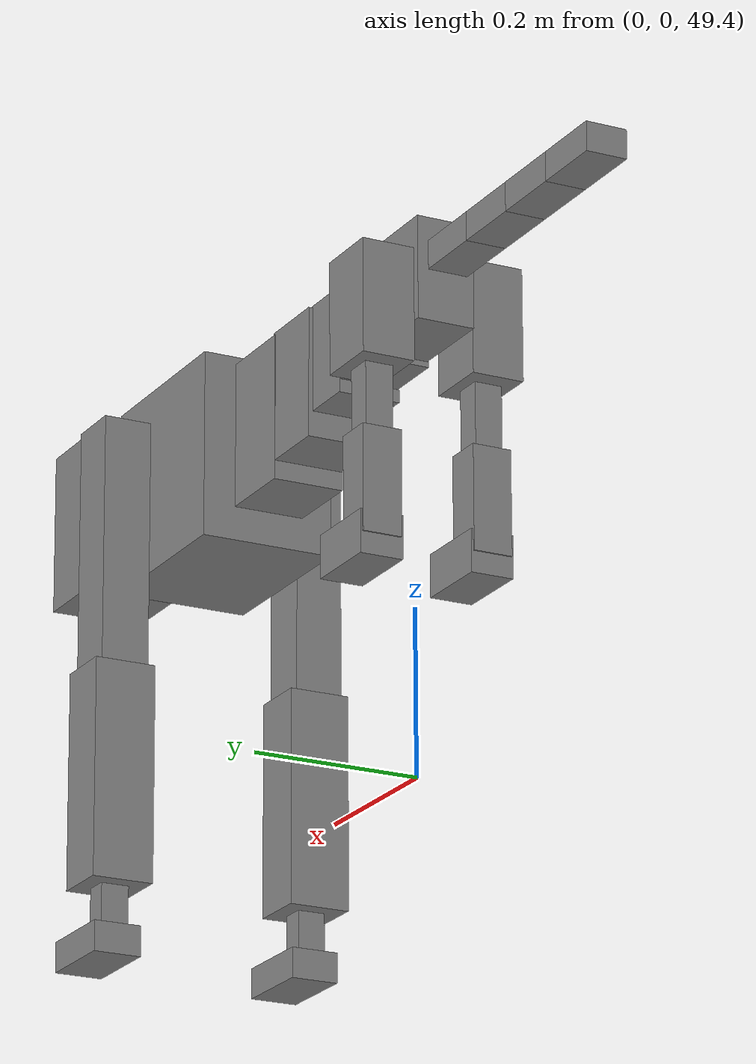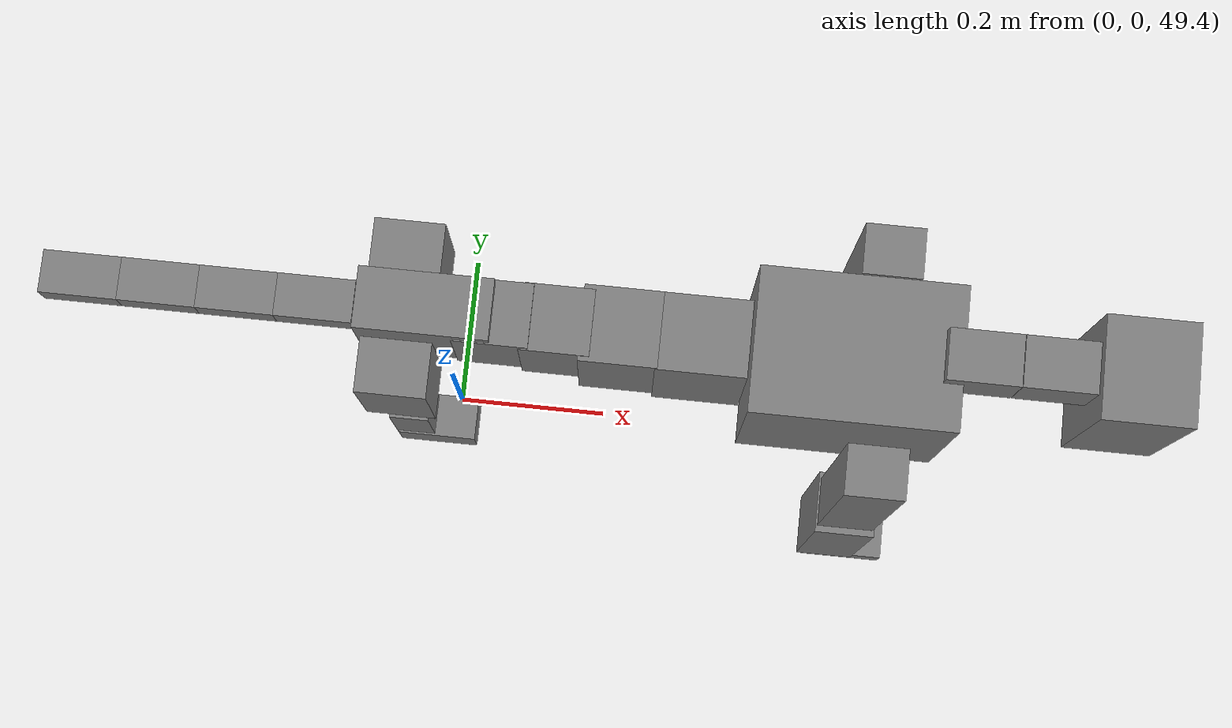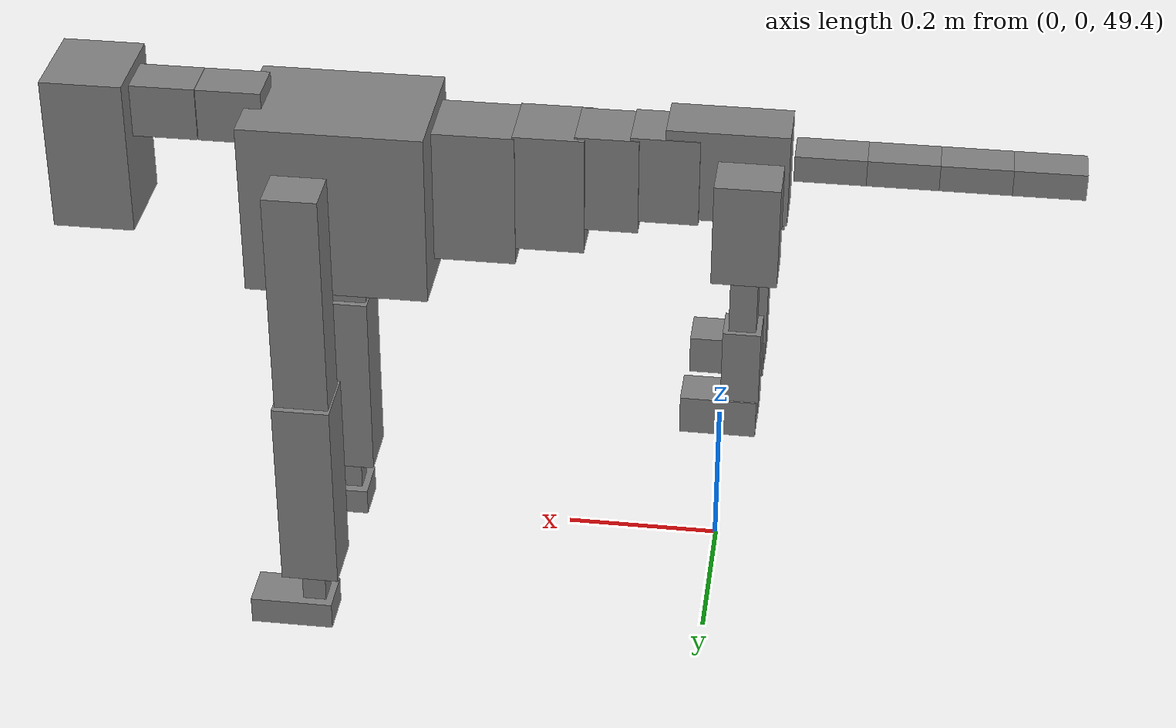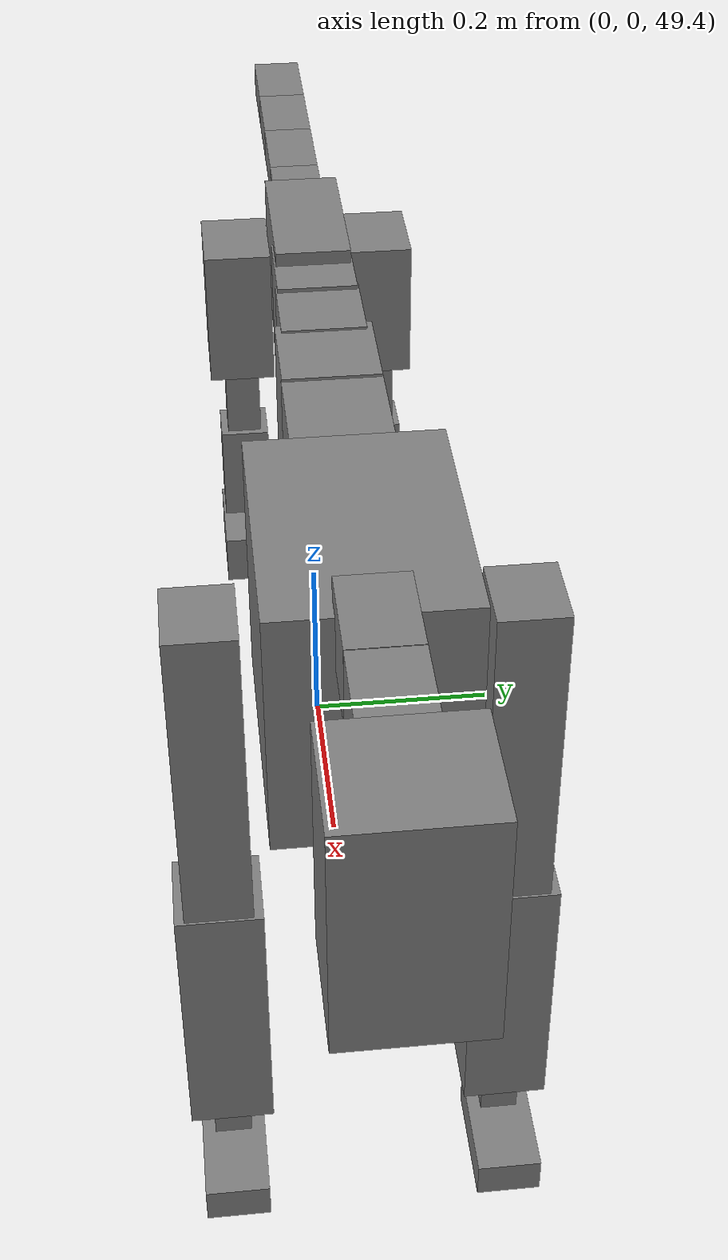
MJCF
<mujoco model="dog">

    <default>
        <joint armature="0.02" stiffness="1" damping="0.2" limited="true"/>
        <geom condim="3" friction="1 0.05 0.05" margin="0.01"/>
        <motor ctrllimited="true" ctrlrange="-1.0 1.0" forcelimited="true" gear="50"/>
    </default>

    <compiler inertiafromgeom="true" angle="radian"/>

    <option timestep="0.016" iterations="50" tolerance="1e-10" solver="Newton" jacobian="dense" cone="pyramidal"/>

    <size nconmax="20000" njmax="60000" nstack="5000000"/>
    <visual>
        <map force="0.1" zfar="30"/>
        <rgba haze="0.15 0.25 0.35 1"/>
        <quality shadowsize="2048"/>
        <global offwidth="800" offheight="800"/>
    </visual>

    <asset>
        <texture type="skybox" builtin="gradient" rgb1="0.3 0.5 0.7" rgb2="0 0 0" width="512" height="512"/>
        <texture name="texplane" type="2d" builtin="checker" rgb1=".2 .3 .4" rgb2=".1 0.15 0.2" width="512" height="512"
                 mark="cross" markrgb=".8 .8 .8"/>
        <texture name="texgeom" type="cube" builtin="flat" mark="cross" width="127" height="1278" rgb1="0.8 0.6 0.4"
                 rgb2="0.8 0.6 0.4" markrgb="1 1 1" random="0.01"/>

        <material name="matplane" reflectance="0.3" texture="texplane" texrepeat="1 1" texuniform="true"/>
        <material name="matgeom" texture="texgeom" texuniform="true" rgba="0.8 0.6 .4 1"/>
    </asset>

    <worldbody>
        <geom name="floor" pos="0 0 0" size="0 0 .25" type="plane" material="matplane" condim="3"/>

        <light directional="false" diffuse=".2 .2 .2" specular="0 0 0" pos="0 0 5" dir="0 0 -1" castshadow="false"/>
        <light mode="targetbodycom" target="torso" directional="false" diffuse=".8 .8 .8" specular="0.3 0.3 0.3"
               pos="0 0 4.0" dir="0 0 -1"/>

        <body name="root" pos="0 0 50">
            <freejoint name="root_1"/>
            <geom type="box" pos="0 0 -0.02" size="0.0774  0.0358  0.063" density="2030"/>

            <body name="spine1" pos="0.054 0 0">
                <joint name="spine1_y" axis="0 1 0" range="0 0.7" limited="true"/>
                <geom type="box" pos="0.02375 0 -0.03" size="0.04375  0.0375  0.05985" density="2030"/>

                <body name="spine2" pos="0.0612 0 0">
                    <joint name="spine2_y" axis="0 1 0" range="-0.15 0.15" limited="true"/>
                    <geom type="box" pos="0.03555  0  -0.04" size="0.04055  0.039  0.06615" density="2030"/>

                    <body name="spine3" pos="0.0730 0 0">
                        <joint name="spine3_y" axis="0 1 0" range="-0.15 0.15" limited="true"/>
                        <geom type="box" pos="0.03555  0  -0.057" size="0.04555  0.0445  0.081" density="2030"/>

                        <body name="spine4" pos="0.0780 0 0">
                            <joint name="spine4_y" axis="0 1 0" range="-0.15 0.15" limited="true"/>
                            <geom type="box" pos="0.05265  0  -0.07" size="0.05265  0.045  0.09135" density="2030"/>

                            <body name="torso" pos="0.1082 0 0">
                                <joint name="torso_y" axis="0 1 0" range="-0.15 0.15" limited="true"/>
                                <geom type="box" pos="0.11925  0  -0.085" size="0.11925  0.085  0.11745"
                                      density="2030"/>

                                <body name="neck1" pos="0.2160  0   0.0180">
                                    <joint name="neck1_y" axis="0 1 0" range="-1.2  -1" limited="true"/>
                                    <geom type="box" pos="0.0423  0  0" size="0.0423  0.03  0.036" density="2325"/>

                                    <body name="neck2" pos="0.0853  0  0">
                                        <joint name="neck2_y" axis="0 1 0" range="0.1  0" limited="true"/>
                                        <geom type="box" pos="0.0423  0  0" size="0.0423  0.03  0.036" density="2325"/>

                                        <body name="head" pos="0.0853  0  0">
                                            <joint name="head_y" axis="0 1 0" range="-0.3  -0.2" limited="true"/>
                                            <geom type="box" pos="0.0531  0  -0.055" size="0.0531  0.06  0.1044"
                                                  density="4030"/>

                                        </body>
                                    </body>
                                </body>

                                <body name="front_shoulder" pos="0.156  0   -0.0480">
                                    <joint name="front_shoulder_y" axis="0 1 0" range="-1 1.5" limited="true"/>
                                    <geom type="box" pos="0 0.13 -0.1421" size="0.0355  0.0303  0.1688" density="1158"/>
                                    <geom type="box" pos="0 -0.13 -0.1421" size="0.0355  0.0303  0.1688"
                                          density="1158"/>

                                    <body name="front_elbow" pos="0  0  -0.2843">
                                        <joint name="front_elbow_y" axis="0 1 0" range="-2 0" limited="true"/>
                                        <geom type="box" pos="0 0.13 -0.1360" size="0.0379  0.0388  0.1360"
                                              density="1081"/>
                                        <geom type="box" pos="0 -0.13 -0.1360" size="0.0379  0.0388  0.1360"
                                              density="1081"/>

                                        <body name="front_wrist" pos="0  0  -0.2720">
                                            <joint name="front_wrist_y" axis="0 1 0" range="-0.2 0" limited="true"/>
                                            <geom type="box" pos="0 0.13 -0.0323" size="0.0157  0.0175  0.0454"
                                                  density="1664"/>
                                            <geom type="box" pos="0 -0.13 -0.0323" size="0.0157  0.0175  0.0454"
                                                  density="1664"/>

                                            <body name="front_finger_end" pos="0  0  -0.0646">
                                                <joint name="front_finger_y" axis="0 1 0" range="-0.4 1"
                                                       limited="true"/>
                                                <geom type="box" pos="0.0302  0.13  -0.0039"
                                                      size="0.0554  0.0302  0.0189" density="1515"/>
                                                <geom type="box" pos="0.0302  -0.13  -0.0039"
                                                      size="0.0554  0.0302  0.0189" density="1515"/>

                                            </body>

                                        </body>
                                    </body>
                                </body>

                            </body>
                        </body>
                    </body>
                </body>
            </body>

            <body name="back_hip" pos="-0.03 0 -0.018">
                <joint name="back_hip_y" axis="0 1 0" range="-1.5 0.3" limited="true"/>
                <geom type="box" pos="0 0.07 -0.0464" size="0.0413  0.0324  0.0692" density="1154"/>
                <geom type="box" pos="0 -0.07 -0.0464" size="0.0413  0.0324  0.0692" density="1154"/>

                <body name="back_knee" pos="0  0  -0.0927">
                    <joint name="back_knee_y" axis="0 1 0" range="0 2.8" limited="true"/>
                    <geom type="box" pos="0 0.07 -0.0564" size="0.0174  0.0172  0.0720" density="1227"/>
                    <geom type="box" pos="0 -0.07 -0.0564" size="0.0174  0.0172  0.0720" density="1227"/>

                    <body name="back_ankle" pos="0  0  -0.1128">
                        <joint name="back_ankle_y" axis="0 1 0" range="-2.2 0" limited="true"/>
                        <geom type="box" pos="0 0.07 -0.0529" size="0.0243  0.0243  0.0641" density="1284"/>
                        <geom type="box" pos="0 -0.07 -0.0529" size="0.0243  0.0243  0.0641" density="1284"/>

                        <body name="back_toe_end" pos="0  0  -0.1058">
                            <joint name="back_toe_y" axis="0 1 0" range="-0.4 1" limited="true"/>
                            <geom type="box" pos="0.0267  0.07  -0.0111" size="0.0489  0.0267  0.0261" density="1515"/>
                            <geom type="box" pos="0.0267  -0.07  -0.0111" size="0.0489  0.0267  0.0261" density="1515"/>

                        </body>
                    </body>
                </body>
            </body>

            <body name="tail1" pos="-0.074 0 -0.006">
                <joint name="tail1_y" axis="0 1 0" range="-0.2 0.2" limited="true"/>
                <geom type="box" pos="-0.0536  0  0" size="0.045  0.025  0.0175" density="1587"/>

                <body name="tail2" pos="-0.09 0 0">
                    <joint name="tail2_y" axis="0 1 0" range="-0.2 0.2" limited="true"/>
                    <geom type="box" pos="-0.0536  0  0" size="0.045  0.025  0.0175" density="1587"/>

                    <body name="tail3" pos="-0.09 0 0">
                        <joint name="tail3_y" axis="0 1 0" range="-0.2 0.2" limited="true"/>
                        <geom type="box" pos="-0.0536  0  0" size="0.045  0.025  0.0175" density="1587"/>

                        <body name="tail4" pos="-0.09 0 0">
                            <joint name="tail4_y" axis="0 1 0" range="-0.2 0.2" limited="true"/>
                            <geom type="box" pos="-0.0536  0  0" size="0.045  0.025  0.0175" density="1587"/>

                        </body>
                    </body>
                </body>
            </body>
        </body>
    </worldbody>

    <actuator>
        <motor joint="spine1_y" forcerange="-150 150     "/>
        <motor joint="spine2_y" forcerange="-150 150     "/>
        <motor joint="spine3_y" forcerange="-150 150     "/>
        <motor joint="spine4_y" forcerange="-150 150     "/>
        <motor joint="torso_y" forcerange="-150 150     "/>
        <motor joint="neck1_y" forcerange="-100 100       "/>
        <motor joint="neck2_y" forcerange="-100 100       "/>
        <motor joint="head_y" forcerange="-150 150       "/>
        <motor joint="front_shoulder_y" forcerange="-136.17 165.94"/>
        <motor joint="front_elbow_y" forcerange="-191.00 191.02"/>
        <motor joint="front_wrist_y" forcerange="-58.09 81.79"/>
        <motor joint="front_finger_y" forcerange="-22.47 98.58"/>
        <motor joint="back_hip_y" forcerange="-283.87 348.48"/>
        <motor joint="back_knee_y" forcerange="-229.83 220.19"/>
        <motor joint="back_angle_y" forcerange="-185.03 103.97"/>
        <motor joint="back_toe_y" forcerange="-84.84 48.54"/>
        <motor joint="tail1_y" forcerange="-50 50     "/>
        <motor joint="tail2_y" forcerange="-50 50     "/>
        <motor joint="tail3_y" forcerange="-50 50     "/>
        <motor joint="tail4_y" forcerange="-50 50     "/>
    </actuator>
</mujoco>
